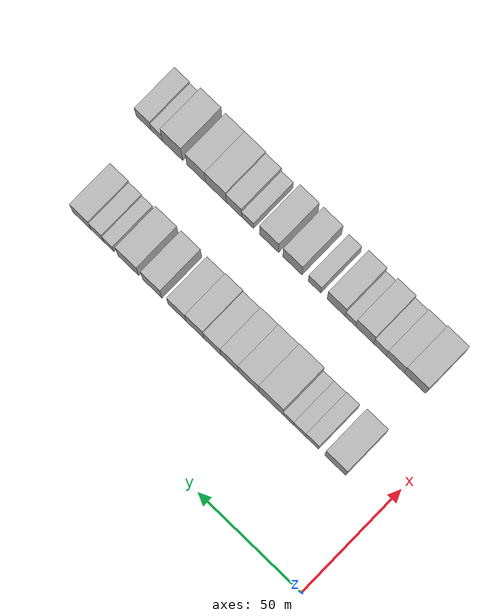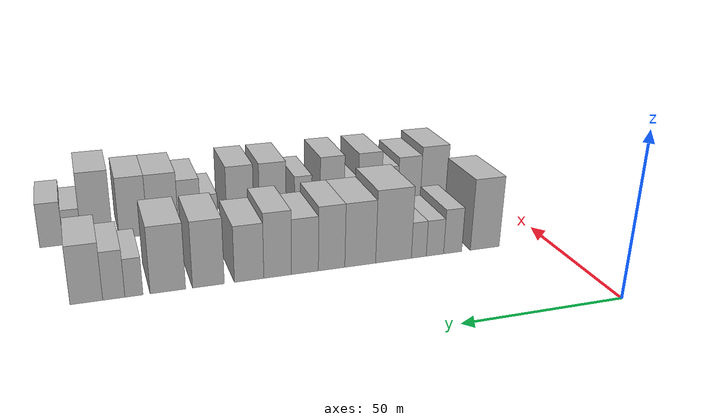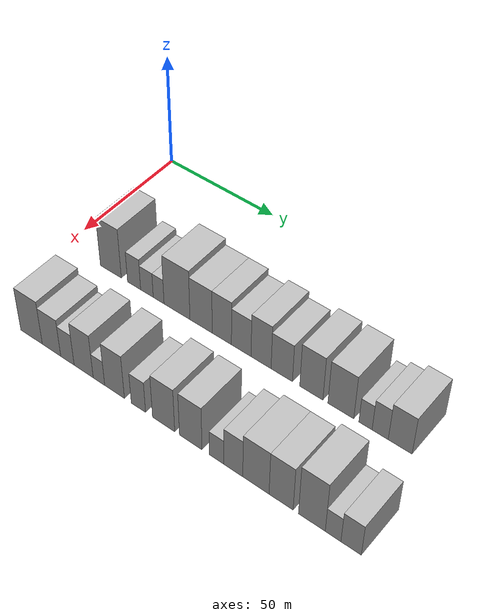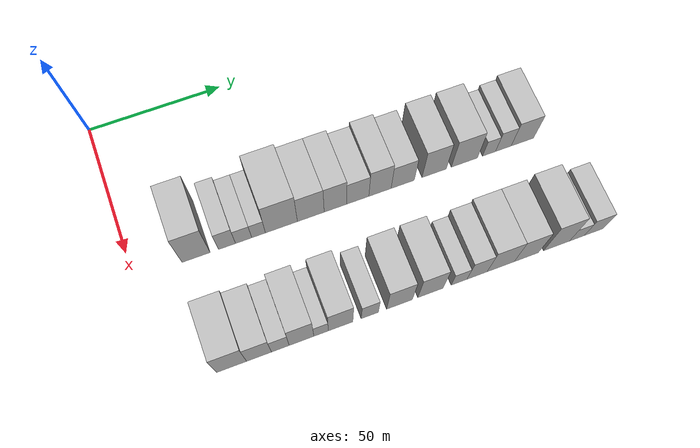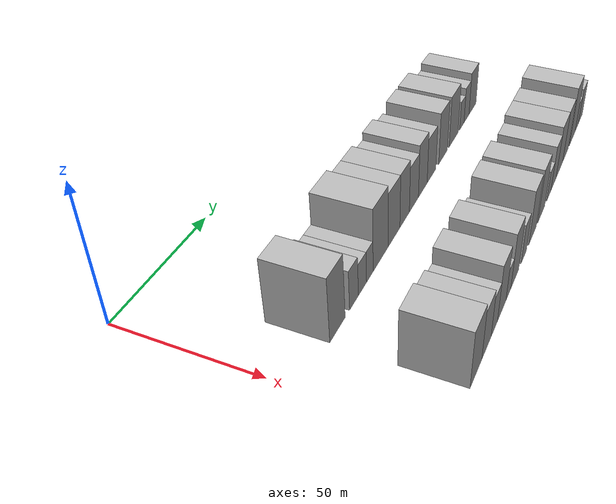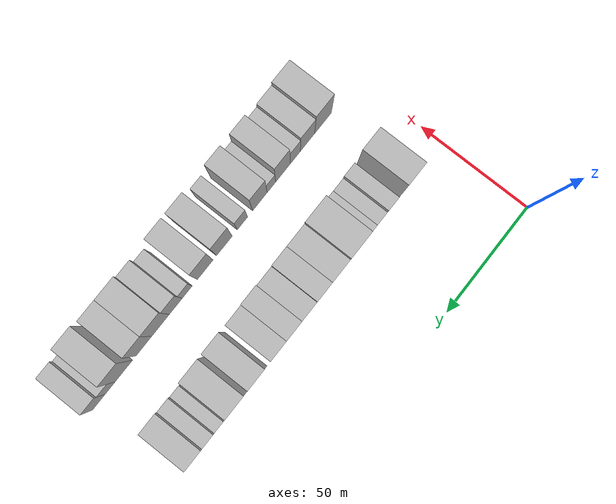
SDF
<sdf version="1.6">
 <world name="default">
  <model name="building_33">
   <static>1</static>
   <pose>50.0000 22.3238 0 0.000000 0.000000 0.000000</pose>
   <link name="link">
    <pose>0 0 12.00 0 0 0</pose>
    <collision name="collision"><geometry><box><size>20.0000 10.1171 24.0000</size></box></geometry></collision>
    <visual name="visual">
     <cast_shadows>0</cast_shadows>
     <geometry><box><size>20.0000 10.1171 24.0000</size></box></geometry>
     <material>
      <script>
       <uri>model://HANNAS_wall/materials/scripts</uri>
       <uri>model://HANNAS_wall/materials/textures</uri>
       <name>vrc/HANNAS_wall</name>
      </script>
     </material>
    </visual>
   </link>
  </model>
  <model name="building_34">
   <static>1</static>
   <pose>50.0000 33.4924 0 0.000000 0.000000 0.000000</pose>
   <link name="link">
    <pose>0 0 7.50 0 0 0</pose>
    <collision name="collision"><geometry><box><size>20.0000 6.2201 15.0000</size></box></geometry></collision>
    <visual name="visual">
     <cast_shadows>0</cast_shadows>
     <geometry><box><size>20.0000 6.2201 15.0000</size></box></geometry>
     <material>
      <script>
       <uri>model://HANNAS_wall/materials/scripts</uri>
       <uri>model://HANNAS_wall/materials/textures</uri>
       <name>vrc/HANNAS_wall</name>
      </script>
     </material>
    </visual>
   </link>
  </model>
  <model name="building_35">
   <static>1</static>
   <pose>50.0000 39.5580 0 0.000000 0.000000 0.000000</pose>
   <link name="link">
    <pose>0 0 6.00 0 0 0</pose>
    <collision name="collision"><geometry><box><size>20.0000 5.9111 12.0000</size></box></geometry></collision>
    <visual name="visual">
     <cast_shadows>0</cast_shadows>
     <geometry><box><size>20.0000 5.9111 12.0000</size></box></geometry>
     <material>
      <script>
       <uri>model://HANNAS_wall/materials/scripts</uri>
       <uri>model://HANNAS_wall/materials/textures</uri>
       <name>vrc/HANNAS_wall</name>
      </script>
     </material>
    </visual>
   </link>
  </model>
  <model name="building_36">
   <static>1</static>
   <pose>50.0000 45.0231 0 0.000000 0.000000 0.000000</pose>
   <link name="link">
    <pose>0 0 6.00 0 0 0</pose>
    <collision name="collision"><geometry><box><size>20.0000 5.0190 12.0000</size></box></geometry></collision>
    <visual name="visual">
     <cast_shadows>0</cast_shadows>
     <geometry><box><size>20.0000 5.0190 12.0000</size></box></geometry>
     <material>
      <script>
       <uri>model://HANNAS_wall/materials/scripts</uri>
       <uri>model://HANNAS_wall/materials/textures</uri>
       <name>vrc/HANNAS_wall</name>
      </script>
     </material>
    </visual>
   </link>
  </model>
  <model name="building_37">
   <static>1</static>
   <pose>50.0000 53.4516 0 0.000000 0.000000 0.000000</pose>
   <link name="link">
    <pose>0 0 12.00 0 0 0</pose>
    <collision name="collision"><geometry><box><size>20.0000 11.8379 24.0000</size></box></geometry></collision>
    <visual name="visual">
     <cast_shadows>0</cast_shadows>
     <geometry><box><size>20.0000 11.8379 24.0000</size></box></geometry>
     <material>
      <script>
       <uri>model://HANNAS_wall/materials/scripts</uri>
       <uri>model://HANNAS_wall/materials/textures</uri>
       <name>vrc/HANNAS_wall</name>
      </script>
     </material>
    </visual>
   </link>
  </model>
  <model name="building_38">
   <static>1</static>
   <pose>50.0000 64.3555 0 0.000000 0.000000 0.000000</pose>
   <link name="link">
    <pose>0 0 10.50 0 0 0</pose>
    <collision name="collision"><geometry><box><size>20.0000 9.9698 21.0000</size></box></geometry></collision>
    <visual name="visual">
     <cast_shadows>0</cast_shadows>
     <geometry><box><size>20.0000 9.9698 21.0000</size></box></geometry>
     <material>
      <script>
       <uri>model://HANNAS_wall/materials/scripts</uri>
       <uri>model://HANNAS_wall/materials/textures</uri>
       <name>vrc/HANNAS_wall</name>
      </script>
     </material>
    </visual>
   </link>
  </model>
  <model name="building_39">
   <static>1</static>
   <pose>50.0000 73.5436 0 0.000000 0.000000 0.000000</pose>
   <link name="link">
    <pose>0 0 10.50 0 0 0</pose>
    <collision name="collision"><geometry><box><size>20.0000 8.4065 21.0000</size></box></geometry></collision>
    <visual name="visual">
     <cast_shadows>0</cast_shadows>
     <geometry><box><size>20.0000 8.4065 21.0000</size></box></geometry>
     <material>
      <script>
       <uri>model://HANNAS_wall/materials/scripts</uri>
       <uri>model://HANNAS_wall/materials/textures</uri>
       <name>vrc/HANNAS_wall</name>
      </script>
     </material>
    </visual>
   </link>
  </model>
  <model name="building_40">
   <static>1</static>
   <pose>50.0000 81.9628 0 0.000000 0.000000 0.000000</pose>
   <link name="link">
    <pose>0 0 9.00 0 0 0</pose>
    <collision name="collision"><geometry><box><size>20.0000 8.4319 18.0000</size></box></geometry></collision>
    <visual name="visual">
     <cast_shadows>0</cast_shadows>
     <geometry><box><size>20.0000 8.4319 18.0000</size></box></geometry>
     <material>
      <script>
       <uri>model://HANNAS_wall/materials/scripts</uri>
       <uri>model://HANNAS_wall/materials/textures</uri>
       <name>vrc/HANNAS_wall</name>
      </script>
     </material>
    </visual>
   </link>
  </model>
  <model name="building_41">
   <static>1</static>
   <pose>50.0000 90.4274 0 0.000000 0.000000 0.000000</pose>
   <link name="link">
    <pose>0 0 10.50 0 0 0</pose>
    <collision name="collision"><geometry><box><size>20.0000 8.4972 21.0000</size></box></geometry></collision>
    <visual name="visual">
     <cast_shadows>0</cast_shadows>
     <geometry><box><size>20.0000 8.4972 21.0000</size></box></geometry>
     <material>
      <script>
       <uri>model://HANNAS_wall/materials/scripts</uri>
       <uri>model://HANNAS_wall/materials/textures</uri>
       <name>vrc/HANNAS_wall</name>
      </script>
     </material>
    </visual>
   </link>
  </model>
  <model name="building_42">
   <static>1</static>
   <pose>50.0000 99.1156 0 0.000000 0.000000 0.000000</pose>
   <link name="link">
    <pose>0 0 9.00 0 0 0</pose>
    <collision name="collision"><geometry><box><size>20.0000 8.8792 18.0000</size></box></geometry></collision>
    <visual name="visual">
     <cast_shadows>0</cast_shadows>
     <geometry><box><size>20.0000 8.8792 18.0000</size></box></geometry>
     <material>
      <script>
       <uri>model://HANNAS_wall/materials/scripts</uri>
       <uri>model://HANNAS_wall/materials/textures</uri>
       <name>vrc/HANNAS_wall</name>
      </script>
     </material>
    </visual>
   </link>
  </model>
  <model name="building_43">
   <static>1</static>
   <pose>50.0000 111.2433 0 0.000000 0.000000 0.000000</pose>
   <link name="link">
    <pose>0 0 10.50 0 0 0</pose>
    <collision name="collision"><geometry><box><size>20.0000 9.3763 21.0000</size></box></geometry></collision>
    <visual name="visual">
     <cast_shadows>0</cast_shadows>
     <geometry><box><size>20.0000 9.3763 21.0000</size></box></geometry>
     <material>
      <script>
       <uri>model://HANNAS_wall/materials/scripts</uri>
       <uri>model://HANNAS_wall/materials/textures</uri>
       <name>vrc/HANNAS_wall</name>
      </script>
     </material>
    </visual>
   </link>
  </model>
  <model name="building_44">
   <static>1</static>
   <pose>50.0000 123.0411 0 0.000000 0.000000 0.000000</pose>
   <link name="link">
    <pose>0 0 10.50 0 0 0</pose>
    <collision name="collision"><geometry><box><size>20.0000 10.2192 21.0000</size></box></geometry></collision>
    <visual name="visual">
     <cast_shadows>0</cast_shadows>
     <geometry><box><size>20.0000 10.2192 21.0000</size></box></geometry>
     <material>
      <script>
       <uri>model://HANNAS_wall/materials/scripts</uri>
       <uri>model://HANNAS_wall/materials/textures</uri>
       <name>vrc/HANNAS_wall</name>
      </script>
     </material>
    </visual>
   </link>
  </model>
  <model name="building_45">
   <static>1</static>
   <pose>50.0000 132.7010 0 0.000000 0.000000 0.000000</pose>
   <link name="link">
    <pose>0 0 6.00 0 0 0</pose>
    <collision name="collision"><geometry><box><size>20.0000 5.1006 12.0000</size></box></geometry></collision>
    <visual name="visual">
     <cast_shadows>0</cast_shadows>
     <geometry><box><size>20.0000 5.1006 12.0000</size></box></geometry>
     <material>
      <script>
       <uri>model://HANNAS_wall/materials/scripts</uri>
       <uri>model://HANNAS_wall/materials/textures</uri>
       <name>vrc/HANNAS_wall</name>
      </script>
     </material>
    </visual>
   </link>
  </model>
  <model name="building_46">
   <static>1</static>
   <pose>50.0000 138.3369 0 0.000000 0.000000 0.000000</pose>
   <link name="link">
    <pose>0 0 7.50 0 0 0</pose>
    <collision name="collision"><geometry><box><size>20.0000 6.1713 15.0000</size></box></geometry></collision>
    <visual name="visual">
     <cast_shadows>0</cast_shadows>
     <geometry><box><size>20.0000 6.1713 15.0000</size></box></geometry>
     <material>
      <script>
       <uri>model://HANNAS_wall/materials/scripts</uri>
       <uri>model://HANNAS_wall/materials/textures</uri>
       <name>vrc/HANNAS_wall</name>
      </script>
     </material>
    </visual>
   </link>
  </model>
  <model name="building_47">
   <static>1</static>
   <pose>50.0000 145.9093 0 0.000000 0.000000 0.000000</pose>
   <link name="link">
    <pose>0 0 9.00 0 0 0</pose>
    <collision name="collision"><geometry><box><size>20.0000 8.9736 18.0000</size></box></geometry></collision>
    <visual name="visual">
     <cast_shadows>0</cast_shadows>
     <geometry><box><size>20.0000 8.9736 18.0000</size></box></geometry>
     <material>
      <script>
       <uri>model://HANNAS_wall/materials/scripts</uri>
       <uri>model://HANNAS_wall/materials/textures</uri>
       <name>vrc/HANNAS_wall</name>
      </script>
     </material>
    </visual>
   </link>
  </model>
  <model name="building_94">
   <static>1</static>
   <pose>90.0000 22.1543 0 0.000000 0.000000 0.000000</pose>
   <link name="link">
    <pose>0 0 10.50 0 0 0</pose>
    <collision name="collision"><geometry><box><size>20.0000 10.3219 21.0000</size></box></geometry></collision>
    <visual name="visual">
     <cast_shadows>0</cast_shadows>
     <geometry><box><size>20.0000 10.3219 21.0000</size></box></geometry>
     <material>
      <script>
       <uri>model://HANNAS_wall/materials/scripts</uri>
       <uri>model://HANNAS_wall/materials/textures</uri>
       <name>vrc/HANNAS_wall</name>
      </script>
     </material>
    </visual>
   </link>
  </model>
  <model name="building_95">
   <static>1</static>
   <pose>90.0000 31.6559 0 0.000000 0.000000 0.000000</pose>
   <link name="link">
    <pose>0 0 9.00 0 0 0</pose>
    <collision name="collision"><geometry><box><size>20.0000 8.6814 18.0000</size></box></geometry></collision>
    <visual name="visual">
     <cast_shadows>0</cast_shadows>
     <geometry><box><size>20.0000 8.6814 18.0000</size></box></geometry>
     <material>
      <script>
       <uri>model://HANNAS_wall/materials/scripts</uri>
       <uri>model://HANNAS_wall/materials/textures</uri>
       <name>vrc/HANNAS_wall</name>
      </script>
     </material>
    </visual>
   </link>
  </model>
  <model name="building_96">
   <static>1</static>
   <pose>90.0000 39.1072 0 0.000000 0.000000 0.000000</pose>
   <link name="link">
    <pose>0 0 7.50 0 0 0</pose>
    <collision name="collision"><geometry><box><size>20.0000 6.2211 15.0000</size></box></geometry></collision>
    <visual name="visual">
     <cast_shadows>0</cast_shadows>
     <geometry><box><size>20.0000 6.2211 15.0000</size></box></geometry>
     <material>
      <script>
       <uri>model://HANNAS_wall/materials/scripts</uri>
       <uri>model://HANNAS_wall/materials/textures</uri>
       <name>vrc/HANNAS_wall</name>
      </script>
     </material>
    </visual>
   </link>
  </model>
  <model name="building_97">
   <static>1</static>
   <pose>90.0000 46.5713 0 0.000000 0.000000 0.000000</pose>
   <link name="link">
    <pose>0 0 10.50 0 0 0</pose>
    <collision name="collision"><geometry><box><size>20.0000 8.7071 21.0000</size></box></geometry></collision>
    <visual name="visual">
     <cast_shadows>0</cast_shadows>
     <geometry><box><size>20.0000 8.7071 21.0000</size></box></geometry>
     <material>
      <script>
       <uri>model://HANNAS_wall/materials/scripts</uri>
       <uri>model://HANNAS_wall/materials/textures</uri>
       <name>vrc/HANNAS_wall</name>
      </script>
     </material>
    </visual>
   </link>
  </model>
  <model name="building_98">
   <static>1</static>
   <pose>90.0000 53.5038 0 0.000000 0.000000 0.000000</pose>
   <link name="link">
    <pose>0 0 6.00 0 0 0</pose>
    <collision name="collision"><geometry><box><size>20.0000 5.1580 12.0000</size></box></geometry></collision>
    <visual name="visual">
     <cast_shadows>0</cast_shadows>
     <geometry><box><size>20.0000 5.1580 12.0000</size></box></geometry>
     <material>
      <script>
       <uri>model://HANNAS_wall/materials/scripts</uri>
       <uri>model://HANNAS_wall/materials/textures</uri>
       <name>vrc/HANNAS_wall</name>
      </script>
     </material>
    </visual>
   </link>
  </model>
  <model name="building_99">
   <static>1</static>
   <pose>90.0000 60.4546 0 0.000000 0.000000 0.000000</pose>
   <link name="link">
    <pose>0 0 10.50 0 0 0</pose>
    <collision name="collision"><geometry><box><size>20.0000 8.7435 21.0000</size></box></geometry></collision>
    <visual name="visual">
     <cast_shadows>0</cast_shadows>
     <geometry><box><size>20.0000 8.7435 21.0000</size></box></geometry>
     <material>
      <script>
       <uri>model://HANNAS_wall/materials/scripts</uri>
       <uri>model://HANNAS_wall/materials/textures</uri>
       <name>vrc/HANNAS_wall</name>
      </script>
     </material>
    </visual>
   </link>
  </model>
  <model name="building_100">
   <static>1</static>
   <pose>90.0000 70.9182 0 0.000000 0.000000 0.000000</pose>
   <link name="link">
    <pose>0 0 7.50 0 0 0</pose>
    <collision name="collision"><geometry><box><size>20.0000 6.1838 15.0000</size></box></geometry></collision>
    <visual name="visual">
     <cast_shadows>0</cast_shadows>
     <geometry><box><size>20.0000 6.1838 15.0000</size></box></geometry>
     <material>
      <script>
       <uri>model://HANNAS_wall/materials/scripts</uri>
       <uri>model://HANNAS_wall/materials/textures</uri>
       <name>vrc/HANNAS_wall</name>
      </script>
     </material>
    </visual>
   </link>
  </model>
  <model name="building_101">
   <static>1</static>
   <pose>90.0000 81.7012 0 0.000000 0.000000 0.000000</pose>
   <link name="link">
    <pose>0 0 10.50 0 0 0</pose>
    <collision name="collision"><geometry><box><size>20.0000 9.3822 21.0000</size></box></geometry></collision>
    <visual name="visual">
     <cast_shadows>0</cast_shadows>
     <geometry><box><size>20.0000 9.3822 21.0000</size></box></geometry>
     <material>
      <script>
       <uri>model://HANNAS_wall/materials/scripts</uri>
       <uri>model://HANNAS_wall/materials/textures</uri>
       <name>vrc/HANNAS_wall</name>
      </script>
     </material>
    </visual>
   </link>
  </model>
  <model name="building_102">
   <static>1</static>
   <pose>90.0000 93.0351 0 0.000000 0.000000 0.000000</pose>
   <link name="link">
    <pose>0 0 10.50 0 0 0</pose>
    <collision name="collision"><geometry><box><size>20.0000 9.2855 21.0000</size></box></geometry></collision>
    <visual name="visual">
     <cast_shadows>0</cast_shadows>
     <geometry><box><size>20.0000 9.2855 21.0000</size></box></geometry>
     <material>
      <script>
       <uri>model://HANNAS_wall/materials/scripts</uri>
       <uri>model://HANNAS_wall/materials/textures</uri>
       <name>vrc/HANNAS_wall</name>
      </script>
     </material>
    </visual>
   </link>
  </model>
  <model name="building_103">
   <static>1</static>
   <pose>90.0000 103.5858 0 0.000000 0.000000 0.000000</pose>
   <link name="link">
    <pose>0 0 6.00 0 0 0</pose>
    <collision name="collision"><geometry><box><size>20.0000 5.8159 12.0000</size></box></geometry></collision>
    <visual name="visual">
     <cast_shadows>0</cast_shadows>
     <geometry><box><size>20.0000 5.8159 12.0000</size></box></geometry>
     <material>
      <script>
       <uri>model://HANNAS_wall/materials/scripts</uri>
       <uri>model://HANNAS_wall/materials/textures</uri>
       <name>vrc/HANNAS_wall</name>
      </script>
     </material>
    </visual>
   </link>
  </model>
  <model name="building_104">
   <static>1</static>
   <pose>90.0000 110.2608 0 0.000000 0.000000 0.000000</pose>
   <link name="link">
    <pose>0 0 9.00 0 0 0</pose>
    <collision name="collision"><geometry><box><size>20.0000 7.5341 18.0000</size></box></geometry></collision>
    <visual name="visual">
     <cast_shadows>0</cast_shadows>
     <geometry><box><size>20.0000 7.5341 18.0000</size></box></geometry>
     <material>
      <script>
       <uri>model://HANNAS_wall/materials/scripts</uri>
       <uri>model://HANNAS_wall/materials/textures</uri>
       <name>vrc/HANNAS_wall</name>
      </script>
     </material>
    </visual>
   </link>
  </model>
  <model name="building_105">
   <static>1</static>
   <pose>90.0000 119.1474 0 0.000000 0.000000 0.000000</pose>
   <link name="link">
    <pose>0 0 10.50 0 0 0</pose>
    <collision name="collision"><geometry><box><size>20.0000 10.2391 21.0000</size></box></geometry></collision>
    <visual name="visual">
     <cast_shadows>0</cast_shadows>
     <geometry><box><size>20.0000 10.2391 21.0000</size></box></geometry>
     <material>
      <script>
       <uri>model://HANNAS_wall/materials/scripts</uri>
       <uri>model://HANNAS_wall/materials/textures</uri>
       <name>vrc/HANNAS_wall</name>
      </script>
     </material>
    </visual>
   </link>
  </model>
  <model name="building_106">
   <static>1</static>
   <pose>90.0000 128.8539 0 0.000000 0.000000 0.000000</pose>
   <link name="link">
    <pose>0 0 10.50 0 0 0</pose>
    <collision name="collision"><geometry><box><size>20.0000 9.1737 21.0000</size></box></geometry></collision>
    <visual name="visual">
     <cast_shadows>0</cast_shadows>
     <geometry><box><size>20.0000 9.1737 21.0000</size></box></geometry>
     <material>
      <script>
       <uri>model://HANNAS_wall/materials/scripts</uri>
       <uri>model://HANNAS_wall/materials/textures</uri>
       <name>vrc/HANNAS_wall</name>
      </script>
     </material>
    </visual>
   </link>
  </model>
  <model name="building_107">
   <static>1</static>
   <pose>90.0000 140.4076 0 0.000000 0.000000 0.000000</pose>
   <link name="link">
    <pose>0 0 12.00 0 0 0</pose>
    <collision name="collision"><geometry><box><size>20.0000 9.9339 24.0000</size></box></geometry></collision>
    <visual name="visual">
     <cast_shadows>0</cast_shadows>
     <geometry><box><size>20.0000 9.9339 24.0000</size></box></geometry>
     <material>
      <script>
       <uri>model://HANNAS_wall/materials/scripts</uri>
       <uri>model://HANNAS_wall/materials/textures</uri>
       <name>vrc/HANNAS_wall</name>
      </script>
     </material>
    </visual>
   </link>
  </model>
  <model name="building_108">
   <static>1</static>
   <pose>90.0000 148.2240 0 0.000000 0.000000 0.000000</pose>
   <link name="link">
    <pose>0 0 6.00 0 0 0</pose>
    <collision name="collision"><geometry><box><size>20.0000 5.6988 12.0000</size></box></geometry></collision>
    <visual name="visual">
     <cast_shadows>0</cast_shadows>
     <geometry><box><size>20.0000 5.6988 12.0000</size></box></geometry>
     <material>
      <script>
       <uri>model://HANNAS_wall/materials/scripts</uri>
       <uri>model://HANNAS_wall/materials/textures</uri>
       <name>vrc/HANNAS_wall</name>
      </script>
     </material>
    </visual>
   </link>
  </model>
  <model name="building_109">
   <static>1</static>
   <pose>90.0000 154.7300 0 0.000000 0.000000 0.000000</pose>
   <link name="link">
    <pose>0 0 7.50 0 0 0</pose>
    <collision name="collision"><geometry><box><size>20.0000 7.3132 15.0000</size></box></geometry></collision>
    <visual name="visual">
     <cast_shadows>0</cast_shadows>
     <geometry><box><size>20.0000 7.3132 15.0000</size></box></geometry>
     <material>
      <script>
       <uri>model://HANNAS_wall/materials/scripts</uri>
       <uri>model://HANNAS_wall/materials/textures</uri>
       <name>vrc/HANNAS_wall</name>
      </script>
     </material>
    </visual>
   </link>
  </model>
 </world>
</sdf>
